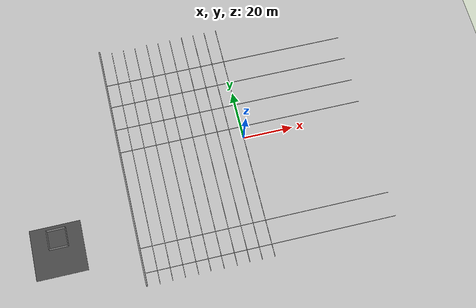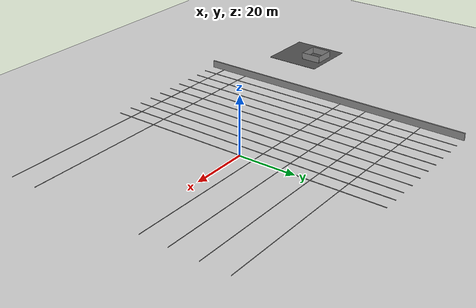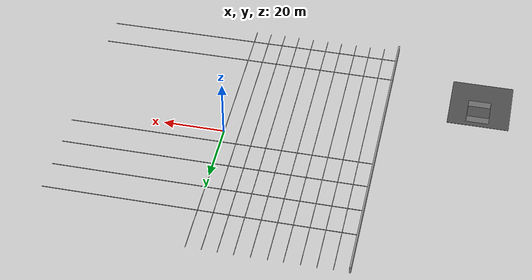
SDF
<sdf version="1.7">
 <world name="default">
  <model name="ground_plane">
   <static>1</static>
   <link name="link">
    <collision name="collision">
     <geometry><plane><normal>0 0 1</normal><size>100 100</size></plane></geometry>
     <surface><friction><ode><mu>100</mu><mu2>50</mu2></ode></friction></surface>
    </collision>
    <visual name="visual">
     <cast_shadows>0</cast_shadows>
     <geometry><plane><normal>0 0 1</normal><size>100 100</size></plane></geometry>
     <material>
      <script><uri>file://media/materials/scripts/gazebo.material</uri><name>Gazebo/Grey</name></script>
     </material>
    </visual>
   </link>
  </model>
  <model name="gridline100m_clone_0_clone_clone">
   <link name="Wall_2">
    <pose>2e-06 -3.05812 0 0 -0 1.571</pose>
    <inertial>
     <mass>1</mass>
     <inertia><ixx>1</ixx><ixy>0</ixy><ixz>0</ixz><iyy>1</iyy><iyz>0</iyz><izz>1</izz></inertia>
    </inertial>
    <visual name="Wall_2_Visual">
     <pose>0 0 0.075 0 -0 0</pose>
     <geometry><box><size>100 0.15 0.15</size></box></geometry>
     <material>
      <script><uri>file://media/materials/scripts/gazebo.material</uri><name>Gazebo/Grey</name></script>
      <ambient>0 0 0 1</ambient>
      <shader type="pixel"><normal_map>__default__</normal_map></shader>
      <diffuse>0.7 0.7 0.7 1</diffuse>
      <specular>0.01 0.01 0.01 1</specular>
      <emissive>0 0 0 1</emissive>
     </material>
     <meta><layer>0</layer></meta>
    </visual>
    <collision name="Wall_2_Collision">
     <pose>0 0 0.075 0 -0 0</pose>
     <geometry><box><size>100 0.15 0.15</size></box></geometry>
     <surface>
      <friction>
       <ode><mu>1</mu><mu2>1</mu2><fdir1>0 0 0</fdir1><slip1>0</slip1><slip2>0</slip2></ode>
       <torsional>
        <coefficient>1</coefficient>
        <patch_radius>0</patch_radius>
        <surface_radius>0</surface_radius>
        <use_patch_radius>1</use_patch_radius>
        <ode><slip>0</slip></ode>
       </torsional>
      </friction>
      <bounce><restitution_coefficient>0</restitution_coefficient><threshold>1e+06</threshold></bounce>
      <contact>
       <collide_without_contact>0</collide_without_contact>
       <collide_without_contact_bitmask>1</collide_without_contact_bitmask>
       <collide_bitmask>1</collide_bitmask>
       <ode>
        <soft_cfm>0</soft_cfm>
        <soft_erp>0.2</soft_erp>
        <kp>1e+13</kp>
        <kd>1</kd>
        <max_vel>0.01</max_vel>
        <min_depth>0</min_depth>
       </ode>
       <bullet>
        <split_impulse>1</split_impulse>
        <split_impulse_penetration_threshold>-0.01</split_impulse_penetration_threshold>
        <soft_cfm>0</soft_cfm>
        <soft_erp>0.2</soft_erp>
        <kp>1e+13</kp>
        <kd>1</kd>
       </bullet>
      </contact>
     </surface>
    </collision>
   </link>
   <static>1</static>
   <pose>-0.105326 3.11667 0 0 -0 0</pose>
  </model>
  <model name="gridline100m_clone_0_clone_clone_0">
   <link name="Wall_2">
    <pose>2e-06 -3.05812 0 0 -0 1.571</pose>
    <inertial>
     <mass>1</mass>
     <inertia><ixx>1</ixx><ixy>0</ixy><ixz>0</ixz><iyy>1</iyy><iyz>0</iyz><izz>1</izz></inertia>
    </inertial>
    <visual name="Wall_2_Visual">
     <pose>0 0 0.075 0 -0 0</pose>
     <geometry><box><size>100 0.15 0.15</size></box></geometry>
     <material>
      <script><uri>file://media/materials/scripts/gazebo.material</uri><name>Gazebo/Grey</name></script>
      <ambient>0 0 0 1</ambient>
      <shader type="pixel"><normal_map>__default__</normal_map></shader>
      <diffuse>0.7 0.7 0.7 1</diffuse>
      <specular>0.01 0.01 0.01 1</specular>
      <emissive>0 0 0 1</emissive>
     </material>
     <meta><layer>0</layer></meta>
    </visual>
    <collision name="Wall_2_Collision">
     <pose>0 0 0.075 0 -0 0</pose>
     <geometry><box><size>100 0.15 0.15</size></box></geometry>
     <surface>
      <friction>
       <ode><mu>1</mu><mu2>1</mu2><fdir1>0 0 0</fdir1><slip1>0</slip1><slip2>0</slip2></ode>
       <torsional>
        <coefficient>1</coefficient>
        <patch_radius>0</patch_radius>
        <surface_radius>0</surface_radius>
        <use_patch_radius>1</use_patch_radius>
        <ode><slip>0</slip></ode>
       </torsional>
      </friction>
      <bounce><restitution_coefficient>0</restitution_coefficient><threshold>1e+06</threshold></bounce>
      <contact>
       <collide_without_contact>0</collide_without_contact>
       <collide_without_contact_bitmask>1</collide_without_contact_bitmask>
       <collide_bitmask>1</collide_bitmask>
       <ode>
        <soft_cfm>0</soft_cfm>
        <soft_erp>0.2</soft_erp>
        <kp>1e+13</kp>
        <kd>1</kd>
        <max_vel>0.01</max_vel>
        <min_depth>0</min_depth>
       </ode>
       <bullet>
        <split_impulse>1</split_impulse>
        <split_impulse_penetration_threshold>-0.01</split_impulse_penetration_threshold>
        <soft_cfm>0</soft_cfm>
        <soft_erp>0.2</soft_erp>
        <kp>1e+13</kp>
        <kd>1</kd>
       </bullet>
      </contact>
     </surface>
    </collision>
   </link>
   <static>1</static>
   <pose>-9.96377 3.09569 0 0 -0 0</pose>
  </model>
  <model name="gridline100m_clone_0_clone_clone_0_clone">
   <link name="Wall_2">
    <pose>2e-06 -3.05812 0 0 -0 1.571</pose>
    <inertial>
     <mass>1</mass>
     <inertia><ixx>1</ixx><ixy>0</ixy><ixz>0</ixz><iyy>1</iyy><iyz>0</iyz><izz>1</izz></inertia>
    </inertial>
    <visual name="Wall_2_Visual">
     <pose>0 0 0.075 0 -0 0</pose>
     <geometry><box><size>100 0.15 0.15</size></box></geometry>
     <material>
      <script><uri>file://media/materials/scripts/gazebo.material</uri><name>Gazebo/Grey</name></script>
      <ambient>0 0 0 1</ambient>
      <shader type="pixel"><normal_map>__default__</normal_map></shader>
      <diffuse>0.7 0.7 0.7 1</diffuse>
      <specular>0.01 0.01 0.01 1</specular>
      <emissive>0 0 0 1</emissive>
     </material>
     <meta><layer>0</layer></meta>
    </visual>
    <collision name="Wall_2_Collision">
     <pose>0 0 0.075 0 -0 0</pose>
     <geometry><box><size>100 0.15 0.15</size></box></geometry>
     <surface>
      <friction>
       <ode><mu>1</mu><mu2>1</mu2><fdir1>0 0 0</fdir1><slip1>0</slip1><slip2>0</slip2></ode>
       <torsional>
        <coefficient>1</coefficient>
        <patch_radius>0</patch_radius>
        <surface_radius>0</surface_radius>
        <use_patch_radius>1</use_patch_radius>
        <ode><slip>0</slip></ode>
       </torsional>
      </friction>
      <bounce><restitution_coefficient>0</restitution_coefficient><threshold>1e+06</threshold></bounce>
      <contact>
       <collide_without_contact>0</collide_without_contact>
       <collide_without_contact_bitmask>1</collide_without_contact_bitmask>
       <collide_bitmask>1</collide_bitmask>
       <ode>
        <soft_cfm>0</soft_cfm>
        <soft_erp>0.2</soft_erp>
        <kp>1e+13</kp>
        <kd>1</kd>
        <max_vel>0.01</max_vel>
        <min_depth>0</min_depth>
       </ode>
       <bullet>
        <split_impulse>1</split_impulse>
        <split_impulse_penetration_threshold>-0.01</split_impulse_penetration_threshold>
        <soft_cfm>0</soft_cfm>
        <soft_erp>0.2</soft_erp>
        <kp>1e+13</kp>
        <kd>1</kd>
       </bullet>
      </contact>
     </surface>
    </collision>
   </link>
   <static>1</static>
   <pose>-20.0665 3.08574 0 0 -0 0</pose>
  </model>
  <model name="gridline100m_clone_0_clone_clone_0_clone_clone">
   <link name="Wall_2">
    <pose>2e-06 -3.05812 0 0 -0 1.571</pose>
    <inertial>
     <mass>1</mass>
     <inertia><ixx>1</ixx><ixy>0</ixy><ixz>0</ixz><iyy>1</iyy><iyz>0</iyz><izz>1</izz></inertia>
    </inertial>
    <visual name="Wall_2_Visual">
     <pose>0 0 0.075 0 -0 0</pose>
     <geometry><box><size>100 0.15 0.15</size></box></geometry>
     <material>
      <script><uri>file://media/materials/scripts/gazebo.material</uri><name>Gazebo/Grey</name></script>
      <ambient>0 0 0 1</ambient>
      <shader type="pixel"><normal_map>__default__</normal_map></shader>
      <diffuse>0.7 0.7 0.7 1</diffuse>
      <specular>0.01 0.01 0.01 1</specular>
      <emissive>0 0 0 1</emissive>
     </material>
     <meta><layer>0</layer></meta>
    </visual>
    <collision name="Wall_2_Collision">
     <pose>0 0 0.075 0 -0 0</pose>
     <geometry><box><size>100 0.15 0.15</size></box></geometry>
     <surface>
      <friction>
       <ode><mu>1</mu><mu2>1</mu2><fdir1>0 0 0</fdir1><slip1>0</slip1><slip2>0</slip2></ode>
       <torsional>
        <coefficient>1</coefficient>
        <patch_radius>0</patch_radius>
        <surface_radius>0</surface_radius>
        <use_patch_radius>1</use_patch_radius>
        <ode><slip>0</slip></ode>
       </torsional>
      </friction>
      <bounce><restitution_coefficient>0</restitution_coefficient><threshold>1e+06</threshold></bounce>
      <contact>
       <collide_without_contact>0</collide_without_contact>
       <collide_without_contact_bitmask>1</collide_without_contact_bitmask>
       <collide_bitmask>1</collide_bitmask>
       <ode>
        <soft_cfm>0</soft_cfm>
        <soft_erp>0.2</soft_erp>
        <kp>1e+13</kp>
        <kd>1</kd>
        <max_vel>0.01</max_vel>
        <min_depth>0</min_depth>
       </ode>
       <bullet>
        <split_impulse>1</split_impulse>
        <split_impulse_penetration_threshold>-0.01</split_impulse_penetration_threshold>
        <soft_cfm>0</soft_cfm>
        <soft_erp>0.2</soft_erp>
        <kp>1e+13</kp>
        <kd>1</kd>
       </bullet>
      </contact>
     </surface>
    </collision>
   </link>
   <static>1</static>
   <pose>-30.0159 3.12682 0 0 -0 0</pose>
  </model>
  <model name="gridline100m_clone_0_clone_clone_0_clone_clone_clone">
   <link name="Wall_2">
    <pose>2e-06 -3.05812 0 0 -0 1.571</pose>
    <inertial>
     <mass>1</mass>
     <inertia><ixx>1</ixx><ixy>0</ixy><ixz>0</ixz><iyy>1</iyy><iyz>0</iyz><izz>1</izz></inertia>
    </inertial>
    <visual name="Wall_2_Visual">
     <pose>0 0 0.075 0 -0 0</pose>
     <geometry><box><size>100 0.15 0.15</size></box></geometry>
     <material>
      <script><uri>file://media/materials/scripts/gazebo.material</uri><name>Gazebo/Grey</name></script>
      <ambient>0 0 0 1</ambient>
      <shader type="pixel"><normal_map>__default__</normal_map></shader>
      <diffuse>0.7 0.7 0.7 1</diffuse>
      <specular>0.01 0.01 0.01 1</specular>
      <emissive>0 0 0 1</emissive>
     </material>
     <meta><layer>0</layer></meta>
    </visual>
    <collision name="Wall_2_Collision">
     <pose>0 0 0.075 0 -0 0</pose>
     <geometry><box><size>100 0.15 0.15</size></box></geometry>
     <surface>
      <friction>
       <ode><mu>1</mu><mu2>1</mu2><fdir1>0 0 0</fdir1><slip1>0</slip1><slip2>0</slip2></ode>
       <torsional>
        <coefficient>1</coefficient>
        <patch_radius>0</patch_radius>
        <surface_radius>0</surface_radius>
        <use_patch_radius>1</use_patch_radius>
        <ode><slip>0</slip></ode>
       </torsional>
      </friction>
      <bounce><restitution_coefficient>0</restitution_coefficient><threshold>1e+06</threshold></bounce>
      <contact>
       <collide_without_contact>0</collide_without_contact>
       <collide_without_contact_bitmask>1</collide_without_contact_bitmask>
       <collide_bitmask>1</collide_bitmask>
       <ode>
        <soft_cfm>0</soft_cfm>
        <soft_erp>0.2</soft_erp>
        <kp>1e+13</kp>
        <kd>1</kd>
        <max_vel>0.01</max_vel>
        <min_depth>0</min_depth>
       </ode>
       <bullet>
        <split_impulse>1</split_impulse>
        <split_impulse_penetration_threshold>-0.01</split_impulse_penetration_threshold>
        <soft_cfm>0</soft_cfm>
        <soft_erp>0.2</soft_erp>
        <kp>1e+13</kp>
        <kd>1</kd>
       </bullet>
      </contact>
     </surface>
    </collision>
   </link>
   <static>1</static>
   <pose>-40.0496 3.09833 0 0 -0 0</pose>
  </model>
  <model name="100mfence_clone_clone">
   <link name="Wall_0">
    <pose>-13.0161 -13.4589 0 0 -0 1.571</pose>
    <inertial>
     <mass>1</mass>
     <inertia><ixx>1</ixx><ixy>0</ixy><ixz>0</ixz><iyy>1</iyy><iyz>0</iyz><izz>1</izz></inertia>
    </inertial>
    <visual name="Wall_0_Visual">
     <pose>0 0 1.25 0 -0 0</pose>
     <geometry><box><size>100 0.5 2.5</size></box></geometry>
     <material>
      <script><uri>file://media/materials/scripts/gazebo.material</uri><name>Gazebo/Grey</name></script>
      <ambient>0.5 0.5 0.5 1</ambient>
      <shader type="pixel"><normal_map>__default__</normal_map></shader>
      <diffuse>0.5 0.5 0.5 1</diffuse>
      <specular>0.5 0.5 0.5 1</specular>
      <emissive>0 0 0 1</emissive>
     </material>
     <meta><layer>0</layer></meta>
    </visual>
    <collision name="Wall_0_Collision">
     <pose>0 0 1.25 0 -0 0</pose>
     <geometry><box><size>100 0.15 2.5</size></box></geometry>
     <surface>
      <friction>
       <ode><mu>1</mu><mu2>1</mu2><fdir1>0 0 0</fdir1><slip1>0</slip1><slip2>0</slip2></ode>
       <torsional>
        <coefficient>1</coefficient>
        <patch_radius>0</patch_radius>
        <surface_radius>0</surface_radius>
        <use_patch_radius>1</use_patch_radius>
        <ode><slip>0</slip></ode>
       </torsional>
      </friction>
      <bounce><restitution_coefficient>0</restitution_coefficient><threshold>1e+06</threshold></bounce>
      <contact>
       <collide_without_contact>0</collide_without_contact>
       <collide_without_contact_bitmask>1</collide_without_contact_bitmask>
       <collide_bitmask>1</collide_bitmask>
       <ode>
        <soft_cfm>0</soft_cfm>
        <soft_erp>0.2</soft_erp>
        <kp>1e+13</kp>
        <kd>1</kd>
        <max_vel>0.01</max_vel>
        <min_depth>0</min_depth>
       </ode>
       <bullet>
        <split_impulse>1</split_impulse>
        <split_impulse_penetration_threshold>-0.01</split_impulse_penetration_threshold>
        <soft_cfm>0</soft_cfm>
        <soft_erp>0.2</soft_erp>
        <kp>1e+13</kp>
        <kd>1</kd>
       </bullet>
      </contact>
     </surface>
    </collision>
   </link>
   <static>1</static>
   <pose>-36.9334 13.4626 0 0 -0 0</pose>
  </model>
  <model name="helipadboundary_0">
   <link name="Wall_10">
    <pose>-0.049274 -3.675 0 0 -0 0</pose>
    <inertial>
     <mass>1</mass>
     <inertia><ixx>1</ixx><ixy>0</ixy><ixz>0</ixz><iyy>1</iyy><iyz>0</iyz><izz>1</izz></inertia>
    </inertial>
    <visual name="Wall_10_Visual">
     <pose>0 0 1.25 0 -0 0</pose>
     <geometry><box><size>7.5 0.15 2.5</size></box></geometry>
     <material>
      <script><uri>file://media/materials/scripts/gazebo.material</uri><name>Gazebo/Grey</name></script>
      <ambient>0.5 0.5 0.5 1</ambient>
      <shader type="pixel"><normal_map>__default__</normal_map></shader>
      <diffuse>0.5 0.5 0.5 1</diffuse>
      <specular>0.5 0.5 0.5 1</specular>
      <emissive>0 0 0 1</emissive>
     </material>
     <meta><layer>0</layer></meta>
    </visual>
    <collision name="Wall_10_Collision">
     <pose>0 0 1.25 0 -0 0</pose>
     <geometry><box><size>7.5 0.15 2.5</size></box></geometry>
     <surface>
      <friction>
       <ode><mu>1</mu><mu2>1</mu2><fdir1>0 0 0</fdir1><slip1>0</slip1><slip2>0</slip2></ode>
       <torsional>
        <coefficient>1</coefficient>
        <patch_radius>0</patch_radius>
        <surface_radius>0</surface_radius>
        <use_patch_radius>1</use_patch_radius>
        <ode><slip>0</slip></ode>
       </torsional>
      </friction>
      <bounce><restitution_coefficient>0</restitution_coefficient><threshold>1e+06</threshold></bounce>
      <contact>
       <collide_without_contact>0</collide_without_contact>
       <collide_without_contact_bitmask>1</collide_without_contact_bitmask>
       <collide_bitmask>1</collide_bitmask>
       <ode>
        <soft_cfm>0</soft_cfm>
        <soft_erp>0.2</soft_erp>
        <kp>1e+13</kp>
        <kd>1</kd>
        <max_vel>0.01</max_vel>
        <min_depth>0</min_depth>
       </ode>
       <bullet>
        <split_impulse>1</split_impulse>
        <split_impulse_penetration_threshold>-0.01</split_impulse_penetration_threshold>
        <soft_cfm>0</soft_cfm>
        <soft_erp>0.2</soft_erp>
        <kp>1e+13</kp>
        <kd>1</kd>
       </bullet>
      </contact>
     </surface>
    </collision>
   </link>
   <link name="Wall_12">
    <pose>3.62573 0 0 0 -0 1.5708</pose>
    <inertial>
     <mass>1</mass>
     <inertia><ixx>1</ixx><ixy>0</ixy><ixz>0</ixz><iyy>1</iyy><iyz>0</iyz><izz>1</izz></inertia>
    </inertial>
    <visual name="Wall_12_Visual">
     <pose>0 0 1.25 0 -0 0</pose>
     <geometry><box><size>7.5 0.15 2.5</size></box></geometry>
     <material>
      <script><uri>file://media/materials/scripts/gazebo.material</uri><name>Gazebo/Grey</name></script>
      <ambient>0.5 0.5 0.5 1</ambient>
      <shader type="pixel"><normal_map>__default__</normal_map></shader>
      <diffuse>0.5 0.5 0.5 1</diffuse>
      <specular>0.5 0.5 0.5 1</specular>
      <emissive>0 0 0 1</emissive>
     </material>
     <meta><layer>0</layer></meta>
    </visual>
    <collision name="Wall_12_Collision">
     <pose>0 0 1.25 0 -0 0</pose>
     <geometry><box><size>7.5 0.15 2.5</size></box></geometry>
     <surface>
      <friction>
       <ode><mu>1</mu><mu2>1</mu2><fdir1>0 0 0</fdir1><slip1>0</slip1><slip2>0</slip2></ode>
       <torsional>
        <coefficient>1</coefficient>
        <patch_radius>0</patch_radius>
        <surface_radius>0</surface_radius>
        <use_patch_radius>1</use_patch_radius>
        <ode><slip>0</slip></ode>
       </torsional>
      </friction>
      <bounce><restitution_coefficient>0</restitution_coefficient><threshold>1e+06</threshold></bounce>
      <contact>
       <collide_without_contact>0</collide_without_contact>
       <collide_without_contact_bitmask>1</collide_without_contact_bitmask>
       <collide_bitmask>1</collide_bitmask>
       <ode>
        <soft_cfm>0</soft_cfm>
        <soft_erp>0.2</soft_erp>
        <kp>1e+13</kp>
        <kd>1</kd>
        <max_vel>0.01</max_vel>
        <min_depth>0</min_depth>
       </ode>
       <bullet>
        <split_impulse>1</split_impulse>
        <split_impulse_penetration_threshold>-0.01</split_impulse_penetration_threshold>
        <soft_cfm>0</soft_cfm>
        <soft_erp>0.2</soft_erp>
        <kp>1e+13</kp>
        <kd>1</kd>
       </bullet>
      </contact>
     </surface>
    </collision>
   </link>
   <link name="Wall_13">
    <pose>-0.049274 3.675 0 0 -0 3.14159</pose>
    <inertial>
     <mass>1</mass>
     <inertia><ixx>1</ixx><ixy>0</ixy><ixz>0</ixz><iyy>1</iyy><iyz>0</iyz><izz>1</izz></inertia>
    </inertial>
    <visual name="Wall_13_Visual">
     <pose>0 0 1.25 0 -0 0</pose>
     <geometry><box><size>7.5 0.15 2.5</size></box></geometry>
     <material>
      <script><uri>file://media/materials/scripts/gazebo.material</uri><name>Gazebo/Grey</name></script>
      <ambient>0.5 0.5 0.5 1</ambient>
      <shader type="pixel"><normal_map>__default__</normal_map></shader>
      <diffuse>0.5 0.5 0.5 1</diffuse>
      <specular>0.5 0.5 0.5 1</specular>
      <emissive>0 0 0 1</emissive>
     </material>
     <meta><layer>0</layer></meta>
    </visual>
    <collision name="Wall_13_Collision">
     <pose>0 0 1.25 0 -0 0</pose>
     <geometry><box><size>7.5 0.15 2.5</size></box></geometry>
     <surface>
      <friction>
       <ode><mu>1</mu><mu2>1</mu2><fdir1>0 0 0</fdir1><slip1>0</slip1><slip2>0</slip2></ode>
       <torsional>
        <coefficient>1</coefficient>
        <patch_radius>0</patch_radius>
        <surface_radius>0</surface_radius>
        <use_patch_radius>1</use_patch_radius>
        <ode><slip>0</slip></ode>
       </torsional>
      </friction>
      <bounce><restitution_coefficient>0</restitution_coefficient><threshold>1e+06</threshold></bounce>
      <contact>
       <collide_without_contact>0</collide_without_contact>
       <collide_without_contact_bitmask>1</collide_without_contact_bitmask>
       <collide_bitmask>1</collide_bitmask>
       <ode>
        <soft_cfm>0</soft_cfm>
        <soft_erp>0.2</soft_erp>
        <kp>1e+13</kp>
        <kd>1</kd>
        <max_vel>0.01</max_vel>
        <min_depth>0</min_depth>
       </ode>
       <bullet>
        <split_impulse>1</split_impulse>
        <split_impulse_penetration_threshold>-0.01</split_impulse_penetration_threshold>
        <soft_cfm>0</soft_cfm>
        <soft_erp>0.2</soft_erp>
        <kp>1e+13</kp>
        <kd>1</kd>
       </bullet>
      </contact>
     </surface>
    </collision>
   </link>
   <link name="Wall_14">
    <pose>-3.72427 0 0 0 0 -1.5708</pose>
    <inertial>
     <mass>1</mass>
     <inertia><ixx>1</ixx><ixy>0</ixy><ixz>0</ixz><iyy>1</iyy><iyz>0</iyz><izz>1</izz></inertia>
    </inertial>
    <visual name="Wall_14_Visual">
     <pose>0 0 1.25 0 -0 0</pose>
     <geometry><box><size>7.5 0.15 2.5</size></box></geometry>
     <material>
      <script><uri>file://media/materials/scripts/gazebo.material</uri><name>Gazebo/Grey</name></script>
      <ambient>0.5 0.5 0.5 1</ambient>
      <shader type="pixel"><normal_map>__default__</normal_map></shader>
      <diffuse>0.5 0.5 0.5 1</diffuse>
      <specular>0.5 0.5 0.5 1</specular>
      <emissive>0 0 0 1</emissive>
     </material>
     <meta><layer>0</layer></meta>
    </visual>
    <collision name="Wall_14_Collision">
     <pose>0 0 1.25 0 -0 0</pose>
     <geometry><box><size>7.5 0.15 2.5</size></box></geometry>
     <surface>
      <friction>
       <ode><mu>1</mu><mu2>1</mu2><fdir1>0 0 0</fdir1><slip1>0</slip1><slip2>0</slip2></ode>
       <torsional>
        <coefficient>1</coefficient>
        <patch_radius>0</patch_radius>
        <surface_radius>0</surface_radius>
        <use_patch_radius>1</use_patch_radius>
        <ode><slip>0</slip></ode>
       </torsional>
      </friction>
      <bounce><restitution_coefficient>0</restitution_coefficient><threshold>1e+06</threshold></bounce>
      <contact>
       <collide_without_contact>0</collide_without_contact>
       <collide_without_contact_bitmask>1</collide_without_contact_bitmask>
       <collide_bitmask>1</collide_bitmask>
       <ode>
        <soft_cfm>0</soft_cfm>
        <soft_erp>0.2</soft_erp>
        <kp>1e+13</kp>
        <kd>1</kd>
        <max_vel>0.01</max_vel>
        <min_depth>0</min_depth>
       </ode>
       <bullet>
        <split_impulse>1</split_impulse>
        <split_impulse_penetration_threshold>-0.01</split_impulse_penetration_threshold>
        <soft_cfm>0</soft_cfm>
        <soft_erp>0.2</soft_erp>
        <kp>1e+13</kp>
        <kd>1</kd>
       </bullet>
      </contact>
     </surface>
    </collision>
   </link>
   <static>1</static>
   <pose>-79.8103 -24.2514 0 0 -0 0</pose>
  </model>
  <model name="gridline100m_clone_0_clone_clone_0_clone_clone_clone_clone">
   <link name="Wall_2">
    <pose>2e-06 -3.05812 0 0 -0 1.571</pose>
    <inertial>
     <mass>1</mass>
     <inertia><ixx>1</ixx><ixy>0</ixy><ixz>0</ixz><iyy>1</iyy><iyz>0</iyz><izz>1</izz></inertia>
    </inertial>
    <visual name="Wall_2_Visual">
     <pose>0 0 0.075 0 -0 0</pose>
     <geometry><box><size>100 0.15 0.15</size></box></geometry>
     <material>
      <script><uri>file://media/materials/scripts/gazebo.material</uri><name>Gazebo/Grey</name></script>
      <ambient>0 0 0 1</ambient>
      <shader type="pixel"><normal_map>__default__</normal_map></shader>
      <diffuse>0.7 0.7 0.7 1</diffuse>
      <specular>0.01 0.01 0.01 1</specular>
      <emissive>0 0 0 1</emissive>
     </material>
     <meta><layer>0</layer></meta>
    </visual>
    <collision name="Wall_2_Collision">
     <pose>0 0 0.075 0 -0 0</pose>
     <geometry><box><size>100 0.15 0.15</size></box></geometry>
     <surface>
      <friction>
       <ode><mu>1</mu><mu2>1</mu2><fdir1>0 0 0</fdir1><slip1>0</slip1><slip2>0</slip2></ode>
       <torsional>
        <coefficient>1</coefficient>
        <patch_radius>0</patch_radius>
        <surface_radius>0</surface_radius>
        <use_patch_radius>1</use_patch_radius>
        <ode><slip>0</slip></ode>
       </torsional>
      </friction>
      <bounce><restitution_coefficient>0</restitution_coefficient><threshold>1e+06</threshold></bounce>
      <contact>
       <collide_without_contact>0</collide_without_contact>
       <collide_without_contact_bitmask>1</collide_without_contact_bitmask>
       <collide_bitmask>1</collide_bitmask>
       <ode>
        <soft_cfm>0</soft_cfm>
        <soft_erp>0.2</soft_erp>
        <kp>1e+13</kp>
        <kd>1</kd>
        <max_vel>0.01</max_vel>
        <min_depth>0</min_depth>
       </ode>
       <bullet>
        <split_impulse>1</split_impulse>
        <split_impulse_penetration_threshold>-0.01</split_impulse_penetration_threshold>
        <soft_cfm>0</soft_cfm>
        <soft_erp>0.2</soft_erp>
        <kp>1e+13</kp>
        <kd>1</kd>
       </bullet>
      </contact>
     </surface>
    </collision>
   </link>
   <static>1</static>
   <pose>-44.9764 2.88672 0 0 -0 0</pose>
  </model>
  <model name="gridline100m_clone_0_clone_clone_0_clone_clone_clone_clone_clone">
   <link name="Wall_2">
    <pose>2e-06 -3.05812 0 0 -0 1.571</pose>
    <inertial>
     <mass>1</mass>
     <inertia><ixx>1</ixx><ixy>0</ixy><ixz>0</ixz><iyy>1</iyy><iyz>0</iyz><izz>1</izz></inertia>
    </inertial>
    <visual name="Wall_2_Visual">
     <pose>0 0 0.075 0 -0 0</pose>
     <geometry><box><size>100 0.15 0.15</size></box></geometry>
     <material>
      <script><uri>file://media/materials/scripts/gazebo.material</uri><name>Gazebo/Grey</name></script>
      <ambient>0 0 0 1</ambient>
      <shader type="pixel"><normal_map>__default__</normal_map></shader>
      <diffuse>0.7 0.7 0.7 1</diffuse>
      <specular>0.01 0.01 0.01 1</specular>
      <emissive>0 0 0 1</emissive>
     </material>
     <meta><layer>0</layer></meta>
    </visual>
    <collision name="Wall_2_Collision">
     <pose>0 0 0.075 0 -0 0</pose>
     <geometry><box><size>100 0.15 0.15</size></box></geometry>
     <surface>
      <friction>
       <ode><mu>1</mu><mu2>1</mu2><fdir1>0 0 0</fdir1><slip1>0</slip1><slip2>0</slip2></ode>
       <torsional>
        <coefficient>1</coefficient>
        <patch_radius>0</patch_radius>
        <surface_radius>0</surface_radius>
        <use_patch_radius>1</use_patch_radius>
        <ode><slip>0</slip></ode>
       </torsional>
      </friction>
      <bounce><restitution_coefficient>0</restitution_coefficient><threshold>1e+06</threshold></bounce>
      <contact>
       <collide_without_contact>0</collide_without_contact>
       <collide_without_contact_bitmask>1</collide_without_contact_bitmask>
       <collide_bitmask>1</collide_bitmask>
       <ode>
        <soft_cfm>0</soft_cfm>
        <soft_erp>0.2</soft_erp>
        <kp>1e+13</kp>
        <kd>1</kd>
        <max_vel>0.01</max_vel>
        <min_depth>0</min_depth>
       </ode>
       <bullet>
        <split_impulse>1</split_impulse>
        <split_impulse_penetration_threshold>-0.01</split_impulse_penetration_threshold>
        <soft_cfm>0</soft_cfm>
        <soft_erp>0.2</soft_erp>
        <kp>1e+13</kp>
        <kd>1</kd>
       </bullet>
      </contact>
     </surface>
    </collision>
   </link>
   <static>1</static>
   <pose>-35.1397 2.90502 0 0 -0 0</pose>
  </model>
  <model name="gridline100m_clone_0_clone_clone_0_clone_clone_clone_clone_clone_0">
   <link name="Wall_2">
    <pose>2e-06 -3.05812 0 0 -0 1.571</pose>
    <inertial>
     <mass>1</mass>
     <inertia><ixx>1</ixx><ixy>0</ixy><ixz>0</ixz><iyy>1</iyy><iyz>0</iyz><izz>1</izz></inertia>
    </inertial>
    <visual name="Wall_2_Visual">
     <pose>0 0 0.075 0 -0 0</pose>
     <geometry><box><size>100 0.15 0.15</size></box></geometry>
     <material>
      <script><uri>file://media/materials/scripts/gazebo.material</uri><name>Gazebo/Grey</name></script>
      <ambient>0 0 0 1</ambient>
      <shader type="pixel"><normal_map>__default__</normal_map></shader>
      <diffuse>0.7 0.7 0.7 1</diffuse>
      <specular>0.01 0.01 0.01 1</specular>
      <emissive>0 0 0 1</emissive>
     </material>
     <meta><layer>0</layer></meta>
    </visual>
    <collision name="Wall_2_Collision">
     <pose>0 0 0.075 0 -0 0</pose>
     <geometry><box><size>100 0.15 0.15</size></box></geometry>
     <surface>
      <friction>
       <ode><mu>1</mu><mu2>1</mu2><fdir1>0 0 0</fdir1><slip1>0</slip1><slip2>0</slip2></ode>
       <torsional>
        <coefficient>1</coefficient>
        <patch_radius>0</patch_radius>
        <surface_radius>0</surface_radius>
        <use_patch_radius>1</use_patch_radius>
        <ode><slip>0</slip></ode>
       </torsional>
      </friction>
      <bounce><restitution_coefficient>0</restitution_coefficient><threshold>1e+06</threshold></bounce>
      <contact>
       <collide_without_contact>0</collide_without_contact>
       <collide_without_contact_bitmask>1</collide_without_contact_bitmask>
       <collide_bitmask>1</collide_bitmask>
       <ode>
        <soft_cfm>0</soft_cfm>
        <soft_erp>0.2</soft_erp>
        <kp>1e+13</kp>
        <kd>1</kd>
        <max_vel>0.01</max_vel>
        <min_depth>0</min_depth>
       </ode>
       <bullet>
        <split_impulse>1</split_impulse>
        <split_impulse_penetration_threshold>-0.01</split_impulse_penetration_threshold>
        <soft_cfm>0</soft_cfm>
        <soft_erp>0.2</soft_erp>
        <kp>1e+13</kp>
        <kd>1</kd>
       </bullet>
      </contact>
     </surface>
    </collision>
   </link>
   <static>1</static>
   <pose>-25.1946 3.11028 0 0 -0 0</pose>
  </model>
  <model name="gridline100m_clone_0_clone_clone_0_clone_clone_clone_clone_clone_1">
   <link name="Wall_2">
    <pose>2e-06 -3.05812 0 0 -0 1.571</pose>
    <inertial>
     <mass>1</mass>
     <inertia><ixx>1</ixx><ixy>0</ixy><ixz>0</ixz><iyy>1</iyy><iyz>0</iyz><izz>1</izz></inertia>
    </inertial>
    <visual name="Wall_2_Visual">
     <pose>0 0 0.075 0 -0 0</pose>
     <geometry><box><size>100 0.15 0.15</size></box></geometry>
     <material>
      <script><uri>file://media/materials/scripts/gazebo.material</uri><name>Gazebo/Grey</name></script>
      <ambient>0 0 0 1</ambient>
      <shader type="pixel"><normal_map>__default__</normal_map></shader>
      <diffuse>0.7 0.7 0.7 1</diffuse>
      <specular>0.01 0.01 0.01 1</specular>
      <emissive>0 0 0 1</emissive>
     </material>
     <meta><layer>0</layer></meta>
    </visual>
    <collision name="Wall_2_Collision">
     <pose>0 0 0.075 0 -0 0</pose>
     <geometry><box><size>100 0.15 0.15</size></box></geometry>
     <surface>
      <friction>
       <ode><mu>1</mu><mu2>1</mu2><fdir1>0 0 0</fdir1><slip1>0</slip1><slip2>0</slip2></ode>
       <torsional>
        <coefficient>1</coefficient>
        <patch_radius>0</patch_radius>
        <surface_radius>0</surface_radius>
        <use_patch_radius>1</use_patch_radius>
        <ode><slip>0</slip></ode>
       </torsional>
      </friction>
      <bounce><restitution_coefficient>0</restitution_coefficient><threshold>1e+06</threshold></bounce>
      <contact>
       <collide_without_contact>0</collide_without_contact>
       <collide_without_contact_bitmask>1</collide_without_contact_bitmask>
       <collide_bitmask>1</collide_bitmask>
       <ode>
        <soft_cfm>0</soft_cfm>
        <soft_erp>0.2</soft_erp>
        <kp>1e+13</kp>
        <kd>1</kd>
        <max_vel>0.01</max_vel>
        <min_depth>0</min_depth>
       </ode>
       <bullet>
        <split_impulse>1</split_impulse>
        <split_impulse_penetration_threshold>-0.01</split_impulse_penetration_threshold>
        <soft_cfm>0</soft_cfm>
        <soft_erp>0.2</soft_erp>
        <kp>1e+13</kp>
        <kd>1</kd>
       </bullet>
      </contact>
     </surface>
    </collision>
   </link>
   <static>1</static>
   <pose>-14.9493 3.16662 0 0 -0 0</pose>
  </model>
  <model name="gridline100m_clone_0_clone_clone_0_clone_clone_clone_clone_clone_2">
   <link name="Wall_2">
    <pose>2e-06 -3.05812 0 0 -0 1.571</pose>
    <inertial>
     <mass>1</mass>
     <inertia><ixx>1</ixx><ixy>0</ixy><ixz>0</ixz><iyy>1</iyy><iyz>0</iyz><izz>1</izz></inertia>
    </inertial>
    <visual name="Wall_2_Visual">
     <pose>0 0 0.075 0 -0 0</pose>
     <geometry><box><size>100 0.15 0.15</size></box></geometry>
     <material>
      <script><uri>file://media/materials/scripts/gazebo.material</uri><name>Gazebo/Grey</name></script>
      <ambient>0 0 0 1</ambient>
      <shader type="pixel"><normal_map>__default__</normal_map></shader>
      <diffuse>0.7 0.7 0.7 1</diffuse>
      <specular>0.01 0.01 0.01 1</specular>
      <emissive>0 0 0 1</emissive>
     </material>
     <meta><layer>0</layer></meta>
    </visual>
    <collision name="Wall_2_Collision">
     <pose>0 0 0.075 0 -0 0</pose>
     <geometry><box><size>100 0.15 0.15</size></box></geometry>
     <surface>
      <friction>
       <ode><mu>1</mu><mu2>1</mu2><fdir1>0 0 0</fdir1><slip1>0</slip1><slip2>0</slip2></ode>
       <torsional>
        <coefficient>1</coefficient>
        <patch_radius>0</patch_radius>
        <surface_radius>0</surface_radius>
        <use_patch_radius>1</use_patch_radius>
        <ode><slip>0</slip></ode>
       </torsional>
      </friction>
      <bounce><restitution_coefficient>0</restitution_coefficient><threshold>1e+06</threshold></bounce>
      <contact>
       <collide_without_contact>0</collide_without_contact>
       <collide_without_contact_bitmask>1</collide_without_contact_bitmask>
       <collide_bitmask>1</collide_bitmask>
       <ode>
        <soft_cfm>0</soft_cfm>
        <soft_erp>0.2</soft_erp>
        <kp>1e+13</kp>
        <kd>1</kd>
        <max_vel>0.01</max_vel>
        <min_depth>0</min_depth>
       </ode>
       <bullet>
        <split_impulse>1</split_impulse>
        <split_impulse_penetration_threshold>-0.01</split_impulse_penetration_threshold>
        <soft_cfm>0</soft_cfm>
        <soft_erp>0.2</soft_erp>
        <kp>1e+13</kp>
        <kd>1</kd>
       </bullet>
      </contact>
     </surface>
    </collision>
   </link>
   <static>1</static>
   <pose>-5.09112 3.1995 0 0 -0 0</pose>
  </model>
  <model name="gridline100m_clone_1_clone_clone_clone">
   <pose>-0.328161 -41.8236 0 0 -0 0</pose>
   <link name="Wall_2">
    <collision name="Wall_2_Collision">
     <geometry><box><size>100 0.15 0.15</size></box></geometry>
     <pose>0 0 0.075 0 -0 0</pose>
    </collision>
    <visual name="Wall_2_Visual">
     <pose>0 0 0.075 0 -0 0</pose>
     <geometry><box><size>100 0.15 0.15</size></box></geometry>
     <material>
      <script><uri>file://media/materials/scripts/gazebo.material</uri><name>Gazebo/Grey</name></script>
      <ambient>0 0 0 1</ambient>
     </material>
     <meta><layer>0</layer></meta>
    </visual>
    <pose>2e-06 -3.05812 0 0 -0 0</pose>
   </link>
   <static>1</static>
  </model>
  <model name="gridline100m_clone_1_clone_clone_clone_0">
   <pose>-0.256123 -32.0725 0 0 -0 0</pose>
   <link name="Wall_2">
    <collision name="Wall_2_Collision">
     <geometry><box><size>100 0.15 0.15</size></box></geometry>
     <pose>0 0 0.075 0 -0 0</pose>
    </collision>
    <visual name="Wall_2_Visual">
     <pose>0 0 0.075 0 -0 0</pose>
     <geometry><box><size>100 0.15 0.15</size></box></geometry>
     <material>
      <script><uri>file://media/materials/scripts/gazebo.material</uri><name>Gazebo/Grey</name></script>
      <ambient>0 0 0 1</ambient>
     </material>
     <meta><layer>0</layer></meta>
    </visual>
    <pose>2e-06 -3.05812 0 0 -0 0</pose>
   </link>
   <static>1</static>
  </model>
  <model name="gridline100m_clone_1_clone_clone_clone_4">
   <pose>-0.128296 7.99348 0 0 -0 0</pose>
   <link name="Wall_2">
    <collision name="Wall_2_Collision">
     <geometry><box><size>100 0.15 0.15</size></box></geometry>
     <pose>0 0 0.075 0 -0 0</pose>
    </collision>
    <visual name="Wall_2_Visual">
     <pose>0 0 0.075 0 -0 0</pose>
     <geometry><box><size>100 0.15 0.15</size></box></geometry>
     <material>
      <script><uri>file://media/materials/scripts/gazebo.material</uri><name>Gazebo/Grey</name></script>
      <ambient>0 0 0 1</ambient>
     </material>
     <meta><layer>0</layer></meta>
    </visual>
    <pose>2e-06 -3.05812 0 0 -0 0</pose>
   </link>
   <static>1</static>
  </model>
  <model name="gridline100m_clone_1_clone_clone_clone_5">
   <pose>-0.131801 17.9375 0 0 -0 0</pose>
   <link name="Wall_2">
    <collision name="Wall_2_Collision">
     <geometry><box><size>100 0.15 0.15</size></box></geometry>
     <pose>0 0 0.075 0 -0 0</pose>
    </collision>
    <visual name="Wall_2_Visual">
     <pose>0 0 0.075 0 -0 0</pose>
     <geometry><box><size>100 0.15 0.15</size></box></geometry>
     <material>
      <script><uri>file://media/materials/scripts/gazebo.material</uri><name>Gazebo/Grey</name></script>
      <ambient>0 0 0 1</ambient>
     </material>
     <meta><layer>0</layer></meta>
    </visual>
    <pose>2e-06 -3.05812 0 0 -0 0</pose>
   </link>
   <static>1</static>
  </model>
  <model name="gridline100m_clone_1_clone_clone_clone_6">
   <pose>-0.251912 28.1503 0 0 -0 0</pose>
   <link name="Wall_2">
    <collision name="Wall_2_Collision">
     <geometry><box><size>100 0.15 0.15</size></box></geometry>
     <pose>0 0 0.075 0 -0 0</pose>
    </collision>
    <visual name="Wall_2_Visual">
     <pose>0 0 0.075 0 -0 0</pose>
     <geometry><box><size>100 0.15 0.15</size></box></geometry>
     <material>
      <script><uri>file://media/materials/scripts/gazebo.material</uri><name>Gazebo/Grey</name></script>
      <ambient>0 0 0 1</ambient>
     </material>
     <meta><layer>0</layer></meta>
    </visual>
    <pose>2e-06 -3.05812 0 0 -0 0</pose>
   </link>
   <static>1</static>
  </model>
  <model name="gridline100m_clone_1_clone_clone_clone_7">
   <pose>-0.246424 38.0876 0 0 -0 0</pose>
   <link name="Wall_2">
    <collision name="Wall_2_Collision">
     <geometry><box><size>100 0.15 0.15</size></box></geometry>
     <pose>0 0 0.075 0 -0 0</pose>
    </collision>
    <visual name="Wall_2_Visual">
     <pose>0 0 0.075 0 -0 0</pose>
     <geometry><box><size>100 0.15 0.15</size></box></geometry>
     <material>
      <script><uri>file://media/materials/scripts/gazebo.material</uri><name>Gazebo/Grey</name></script>
      <ambient>0 0 0 1</ambient>
     </material>
     <meta><layer>0</layer></meta>
    </visual>
    <pose>2e-06 -3.05812 0 0 -0 0</pose>
   </link>
   <static>1</static>
  </model>
  <model name="asphalt_plane">
   <static>1</static>
   <link name="link">
    <collision name="collision"><geometry><box><size>20 20 0.1</size></box></geometry></collision>
    <visual name="visual">
     <cast_shadows>0</cast_shadows>
     <geometry><box><size>20 20 0.1</size></box></geometry>
     <material>
      <script>
       <uri>model://asphalt_plane/materials/scripts</uri>
       <uri>model://asphalt_plane/materials/textures</uri>
       <name>vrc/asphalt</name>
      </script>
     </material>
    </visual>
   </link>
   <pose>-80.2255 -28.729 0 0 -0 0</pose>
  </model>
 </world>
</sdf>
